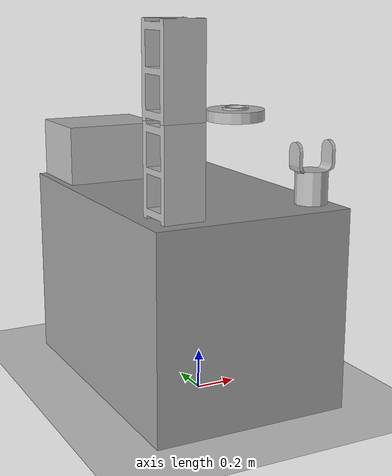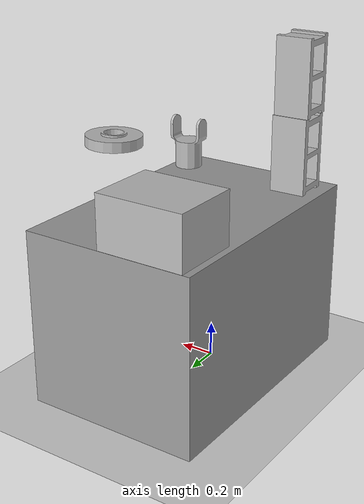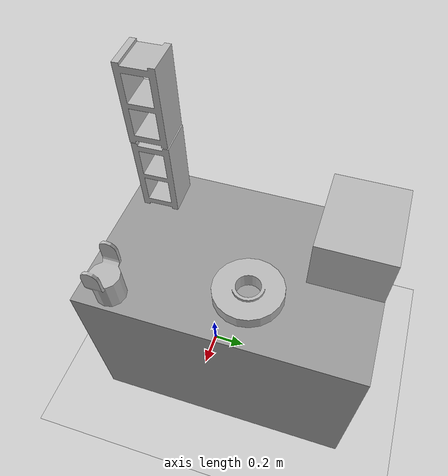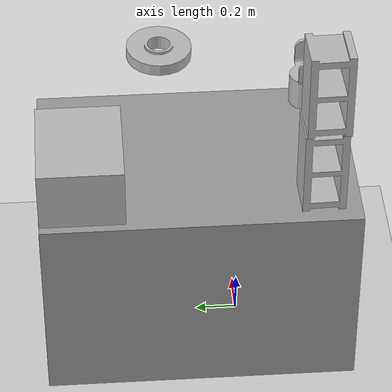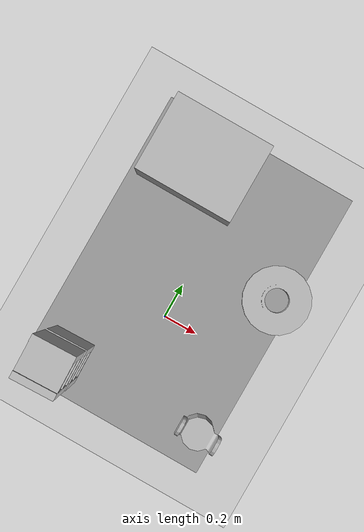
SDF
<sdf version="1.4">
 <world name="default">
  <model name="ground_plane">
   <static>1</static>
   <link name="link">
    <collision name="collision">
     <geometry><plane><normal>0 0 1</normal><size>100 100</size></plane></geometry>
     <surface><friction><ode><mu>100</mu><mu2>50</mu2></ode></friction></surface>
    </collision>
    <visual name="visual">
     <cast_shadows>0</cast_shadows>
     <geometry><plane><normal>0 0 1</normal><size>100 100</size></plane></geometry>
     <material>
      <script><uri>file://media/materials/scripts/gazebo.material</uri><name>Gazebo/Grey</name></script>
     </material>
    </visual>
    <velocity_decay><linear>0</linear><angular>0</angular></velocity_decay>
   </link>
  </model>
  <light name="sun" type="directional">
   <pose>0 0 10 0 -0 0</pose>
   <diffuse>0.8 0.8 0.8 1</diffuse>
   <specular>0.2 0.2 0.2 1</specular>
   <attenuation>
    <range>1000</range>
    <constant>0.9</constant>
    <linear>0.01</linear>
    <quadratic>0.001</quadratic>
   </attenuation>
   <direction>-0.5 0.1 -0.9</direction>
  </light>
  <model name="demo_stage">
   <pose>0.004747 0.206321 0.5 0 -0 0</pose>
   <link name="link">
    <inertial>
     <mass>1</mass>
     <inertia><ixx>1</ixx><ixy>0</ixy><ixz>0</ixz><iyy>1</iyy><iyz>0</iyz><izz>1</izz></inertia>
    </inertial>
    <collision name="collision"><geometry><box><size>1 1.5 1</size></box></geometry></collision>
    <visual name="visual">
     <geometry><box><size>1 1.5 1</size></box></geometry>
     <material>
      <script><uri>file://media/materials/scripts/gazebo.material</uri><name>Gazebo/Grey</name></script>
     </material>
    </visual>
    <velocity_decay><linear>0</linear><angular>0</angular></velocity_decay>
   </link>
   <static>1</static>
  </model>
  <physics type="ode">
   <max_step_size>0.001</max_step_size>
   <real_time_factor>1</real_time_factor>
   <real_time_update_rate>1000</real_time_update_rate>
   <gravity>0 0 -9.8</gravity>
  </physics>
  <scene><ambient>0.4 0.4 0.4 1</ambient><background>0.7 0.7 0.7 1</background><shadows>1</shadows></scene>
  <spherical_coordinates>
   <surface_model>EARTH_WGS84</surface_model>
   <latitude_deg>0</latitude_deg>
   <longitude_deg>0</longitude_deg>
   <elevation>0</elevation>
   <heading_deg>0</heading_deg>
  </spherical_coordinates>
  <model name="coke_can_0">
   <link name="link">
    <inertial>
     <pose>-0.01 -0.012 0.15 0 -0 0</pose>
     <mass>0.39</mass>
     <inertia><ixx>0.00058</ixx><ixy>0</ixy><ixz>0</ixz><iyy>0.00058</iyy><iyz>0</iyz><izz>0.00019</izz></inertia>
    </inertial>
    <collision name="collision">
     <pose>0 0 -0.46 0 -0 0</pose>
     <geometry><mesh><uri>model://coke_can/meshes/coke_can.dae</uri></mesh></geometry>
     <surface>
      <friction><ode><mu>1</mu><mu2>1</mu2></ode></friction>
      <contact><ode><kp>1e+07</kp><kd>1</kd><min_depth>0.001</min_depth><max_vel>0.1</max_vel></ode></contact>
     </surface>
    </collision>
    <visual name="visual">
     <pose>0 0 -0.46 0 -0 0</pose>
     <geometry><mesh><uri>model://coke_can/meshes/coke_can.dae</uri></mesh></geometry>
    </visual>
    <velocity_decay><linear>0</linear><angular>0</angular></velocity_decay>
   </link>
   <pose>0.40798 0.379118 0.996393 0.017099 -0.009329 -0.011463</pose>
   <static>0</static>
  </model>
  <model name="u_joint_part">
   <pose>0.406213 -0.362162 0.999996 1.9e-05 6.4e-05 0.000672</pose>
   <link name="link">
    <inertial>
     <pose>0 0 0.08086 0 -0 0</pose>
     <mass>0.5</mass>
     <inertia>
      <ixx>0.00187559</ixx>
      <ixy>0</ixy>
      <ixz>0</ixz>
      <iyy>0.00187559</iyy>
      <iyz>0</iyz>
      <izz>0.00157173</izz>
     </inertia>
    </inertial>
    <collision name="collision1">
     <pose>0 0 0.08086 0 -0 0</pose>
     <geometry><cylinder><radius>0.07929</radius><length>0.16172</length></cylinder></geometry>
    </collision>
    <collision name="collision2">
     <pose>-0.09124 0 0.22804 0 -0 0</pose>
     <geometry><box><size>0.01716 0.08862 0.13878</size></box></geometry>
    </collision>
    <collision name="collision3">
     <pose>0.09124 0 0.22804 0 -0 0</pose>
     <geometry><box><size>0.01716 0.08862 0.13878</size></box></geometry>
    </collision>
    <visual name="visual">
     <geometry><mesh><uri>model://u_joint_part/meshes/u_joint.dae</uri></mesh></geometry>
     <material>
      <script>
       <uri>model://arm_part/materials/scripts</uri>
       <uri>model://arm_part/materials/textures</uri>
       <name>ArmPart/Diffuse</name>
      </script>
     </material>
    </visual>
    <velocity_decay><linear>0</linear><angular>0</angular></velocity_decay>
   </link>
   <static>0</static>
  </model>
  <model name="cardboard_box">
   <pose>-0.204574 0.754706 1.149 0 -0 0</pose>
   <link name="link">
    <inertial>
     <mass>2</mass>
     <inertia>
      <ixx>0.0416667</ixx>
      <ixy>0</ixy>
      <ixz>0</ixz>
      <iyy>0.0566667</iyy>
      <iyz>0</iyz>
      <izz>0.0683333</izz>
     </inertia>
    </inertial>
    <collision name="collision">
     <geometry><box><size>0.5 0.4 0.3</size></box></geometry>
     <surface>
      <friction><ode><mu>1</mu><mu2>1</mu2></ode></friction>
      <contact><ode><kp>1e+07</kp><kd>1</kd><min_depth>0.001</min_depth><max_vel>0.1</max_vel></ode></contact>
     </surface>
    </collision>
    <visual name="visual">
     <pose>0 0 -0.15 0 -0 0</pose>
     <geometry>
      <mesh><uri>model://cardboard_box/meshes/cardboard_box.dae</uri><scale>1.25932 1.00746 0.755591</scale></mesh>
     </geometry>
    </visual>
    <velocity_decay><linear>0</linear><angular>0</angular></velocity_decay>
   </link>
   <static>0</static>
  </model>
  <model name="cinder_block">
   <link name="link">
    <inertial>
     <pose>0 0 0.1016 0 -0 0</pose>
     <mass>5</mass>
     <inertia>
      <ixx>0.028705</ixx>
      <ixy>0</ixy>
      <iyy>0.073708</iyy>
      <ixz>0</ixz>
      <iyz>0</iyz>
      <izz>0.06908</izz>
     </inertia>
    </inertial>
    <visual name="visual">
     <geometry><mesh><uri>model://cinder_block/meshes/cinder_block.dae</uri></mesh></geometry>
    </visual>
    <collision name="left">
     <pose>0 -0.08465 0.1016 0 -0 0</pose>
     <geometry><box><size>0.43495 0.0339 0.2032</size></box></geometry>
     <surface>
      <contact><ode><max_vel>0.1</max_vel><min_depth>0.001</min_depth></ode></contact>
      <friction><ode><mu>1</mu><mu2>1</mu2></ode></friction>
     </surface>
    </collision>
    <collision name="right">
     <pose>0 0.08465 0.1016 0 -0 0</pose>
     <geometry><box><size>0.43495 0.0339 0.2032</size></box></geometry>
     <surface>
      <contact><ode><max_vel>0.1</max_vel><min_depth>0.001</min_depth></ode></contact>
      <friction><ode><mu>1</mu><mu2>1</mu2></ode></friction>
     </surface>
    </collision>
    <collision name="front">
     <pose>0.18625 0 0.1016 0 -0 0</pose>
     <geometry><box><size>0.0339 0.1354 0.203</size></box></geometry>
     <surface>
      <contact><ode><max_vel>0.1</max_vel><min_depth>0.001</min_depth></ode></contact>
      <friction><ode><mu>1</mu><mu2>1</mu2></ode></friction>
     </surface>
    </collision>
    <collision name="middle">
     <pose>0 0 0.1016 0 -0 0</pose>
     <geometry><box><size>0.0339 0.1354 0.203</size></box></geometry>
     <surface>
      <contact><ode><max_vel>0.1</max_vel><min_depth>0.001</min_depth></ode></contact>
      <friction><ode><mu>1</mu><mu2>1</mu2></ode></friction>
     </surface>
    </collision>
    <collision name="back">
     <pose>-0.18625 0 0.1016 0 -0 0</pose>
     <geometry><box><size>0.0339 0.1354 0.203</size></box></geometry>
     <surface>
      <contact><ode><max_vel>0.1</max_vel><min_depth>0.001</min_depth></ode></contact>
      <friction><ode><mu>1</mu><mu2>1</mu2></ode></friction>
     </surface>
    </collision>
    <velocity_decay><linear>0</linear><angular>0</angular></velocity_decay>
   </link>
   <pose>-0.217117 -0.35772 1.21747 -1.59174 -1.57078 1.61866</pose>
   <static>0</static>
  </model>
  <model name="disk_part">
   <link name="link">
    <inertial>
     <pose>0 0 0.02895 0 -0 0</pose>
     <mass>0.5</mass>
     <inertia>
      <ixx>0.00321218</ixx>
      <ixy>0</ixy>
      <ixz>0</ixz>
      <iyy>0.00321218</iyy>
      <iyz>0</iyz>
      <izz>0.00614499</izz>
     </inertia>
    </inertial>
    <collision name="collision">
     <pose>0 0 0.02895 0 -0 0</pose>
     <geometry><cylinder><length>0.0579</length><radius>0.15678</radius></cylinder></geometry>
    </collision>
    <visual name="visual">
     <geometry><mesh><uri>model://disk_part/meshes/disk.dae</uri></mesh></geometry>
     <material>
      <script>
       <uri>model://arm_part/materials/scripts</uri>
       <uri>model://arm_part/materials/textures</uri>
       <name>ArmPart/Diffuse</name>
      </script>
     </material>
    </visual>
    <velocity_decay><linear>0</linear><angular>0</angular></velocity_decay>
   </link>
   <pose>0.401046 0.354489 1.31407 0.020819 -0.014073 -0.012909</pose>
   <static>0</static>
  </model>
  <model name="cinder_block_0">
   <link name="link">
    <inertial>
     <pose>0 0 0.1016 0 -0 0</pose>
     <mass>5</mass>
     <inertia>
      <ixx>0.028705</ixx>
      <ixy>0</ixy>
      <iyy>0.073708</iyy>
      <ixz>0</ixz>
      <iyz>0</iyz>
      <izz>0.06908</izz>
     </inertia>
    </inertial>
    <visual name="visual">
     <geometry><mesh><uri>model://cinder_block/meshes/cinder_block.dae</uri></mesh></geometry>
    </visual>
    <collision name="left">
     <pose>0 -0.08465 0.1016 0 -0 0</pose>
     <geometry><box><size>0.43495 0.0339 0.2032</size></box></geometry>
     <surface>
      <contact><ode><max_vel>0.1</max_vel><min_depth>0.001</min_depth></ode></contact>
      <friction><ode><mu>1</mu><mu2>1</mu2></ode></friction>
     </surface>
    </collision>
    <collision name="right">
     <pose>0 0.08465 0.1016 0 -0 0</pose>
     <geometry><box><size>0.43495 0.0339 0.2032</size></box></geometry>
     <surface>
      <contact><ode><max_vel>0.1</max_vel><min_depth>0.001</min_depth></ode></contact>
      <friction><ode><mu>1</mu><mu2>1</mu2></ode></friction>
     </surface>
    </collision>
    <collision name="front">
     <pose>0.18625 0 0.1016 0 -0 0</pose>
     <geometry><box><size>0.0339 0.1354 0.203</size></box></geometry>
     <surface>
      <contact><ode><max_vel>0.1</max_vel><min_depth>0.001</min_depth></ode></contact>
      <friction><ode><mu>1</mu><mu2>1</mu2></ode></friction>
     </surface>
    </collision>
    <collision name="middle">
     <pose>0 0 0.1016 0 -0 0</pose>
     <geometry><box><size>0.0339 0.1354 0.203</size></box></geometry>
     <surface>
      <contact><ode><max_vel>0.1</max_vel><min_depth>0.001</min_depth></ode></contact>
      <friction><ode><mu>1</mu><mu2>1</mu2></ode></friction>
     </surface>
    </collision>
    <collision name="back">
     <pose>-0.18625 0 0.1016 0 -0 0</pose>
     <geometry><box><size>0.0339 0.1354 0.203</size></box></geometry>
     <surface>
      <contact><ode><max_vel>0.1</max_vel><min_depth>0.001</min_depth></ode></contact>
      <friction><ode><mu>1</mu><mu2>1</mu2></ode></friction>
     </surface>
    </collision>
    <velocity_decay><linear>0</linear><angular>0</angular></velocity_decay>
   </link>
   <pose>-0.221515 -0.363579 1.65204 0.072452 -1.5696 -0.040815</pose>
   <static>0</static>
  </model>
 </world>
</sdf>
